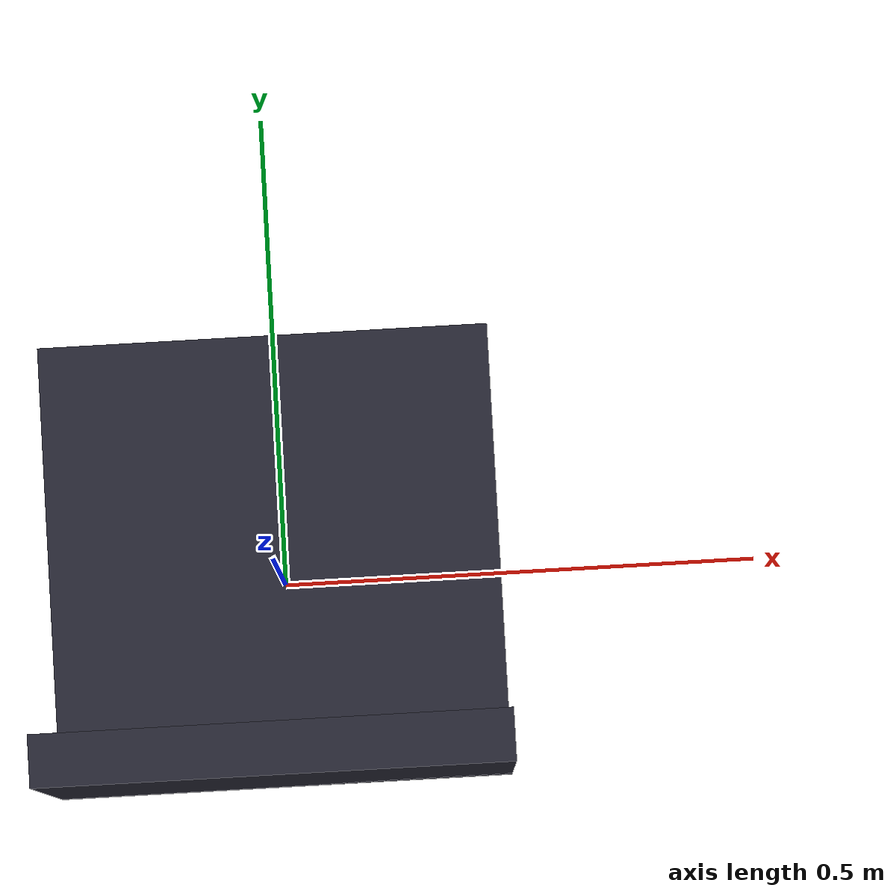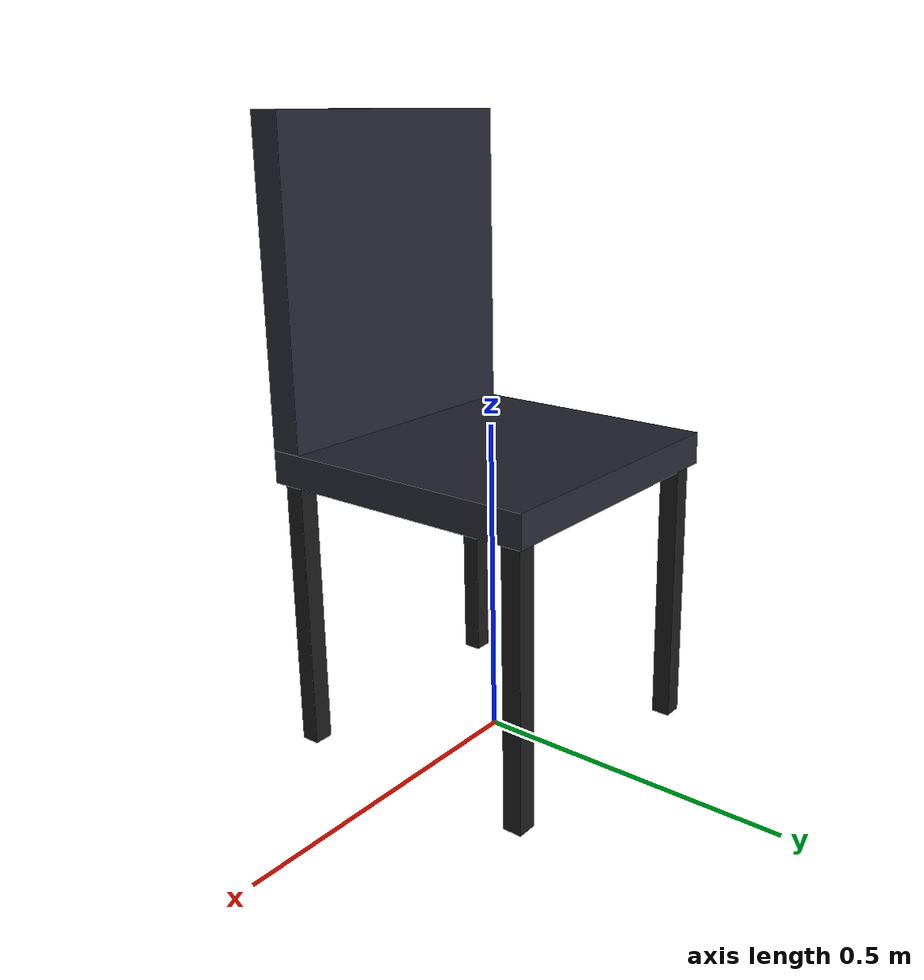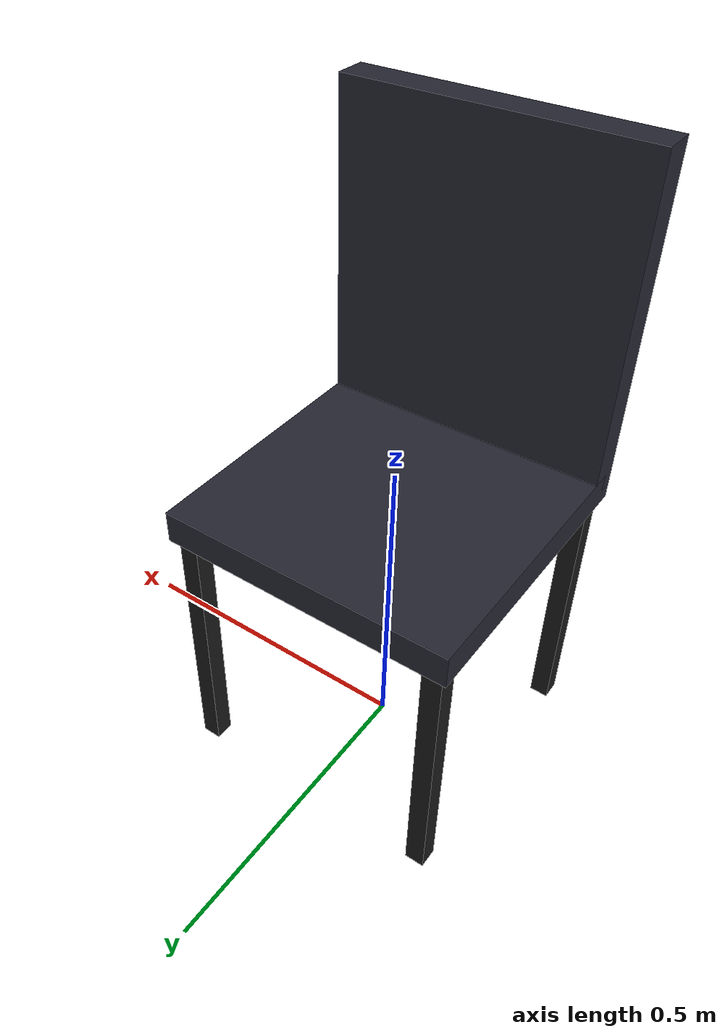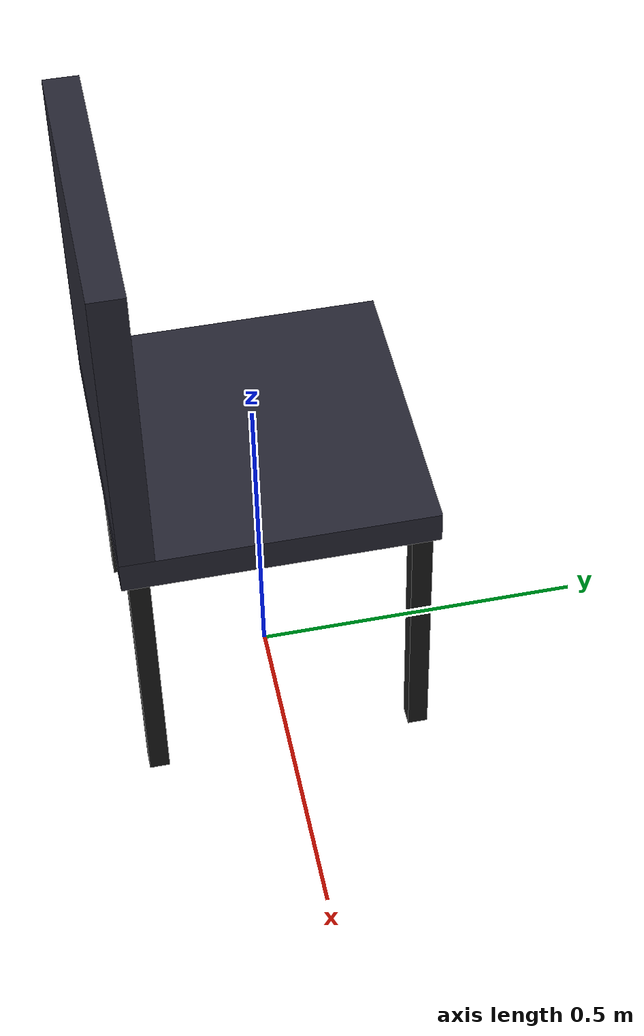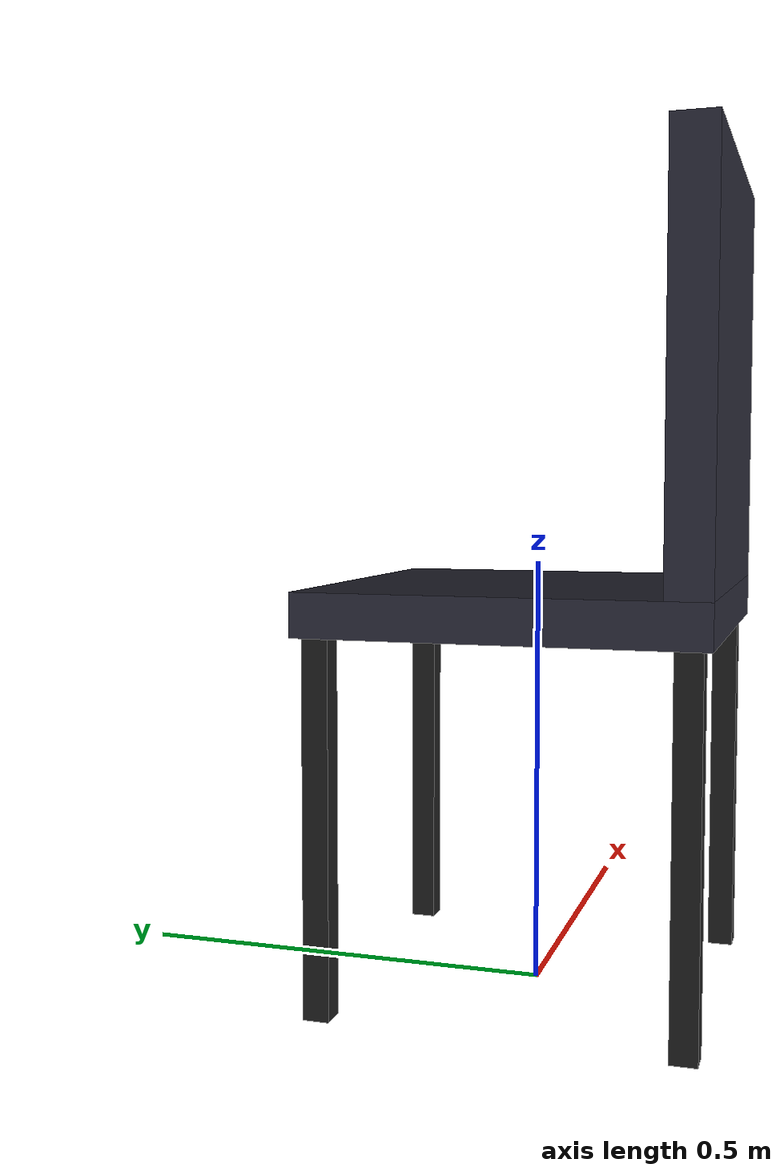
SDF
<?xml version="1.0"?>

<sdf version="1.10">

  <model name="office_chair">

    <static>true</static>

    <link name="chair_link">

      <!-- SEAT                        -->

      <collision name="seat_collision">
        <pose>0 0 0.45 0 0 0</pose>
        <geometry>
          <box>
            <size>0.45 0.45 0.05</size>
          </box>
        </geometry>
      </collision>

      <visual name="seat_visual">
        <pose>0 0 0.45 0 0 0</pose>
        <geometry>
          <box>
            <size>0.45 0.45 0.05</size>
          </box>
        </geometry>
        <material>
          <ambient>0.15 0.15 0.2 1</ambient>
          <diffuse>0.15 0.15 0.2 1</diffuse>
          <specular>0.3 0.3 0.3 1</specular>
        </material>
      </visual>

      <!-- BACKREST                   -->

      <collision name="backrest_collision">
        <pose>0 -0.2 0.7 0 0 0</pose>
        <geometry>
          <box>
            <size>0.45 0.05 0.5</size>
          </box>
        </geometry>
      </collision>

      <visual name="backrest_visual">
        <pose>0 -0.2 0.7 0 0 0</pose>
        <geometry>
          <box>
            <size>0.45 0.05 0.5</size>
          </box>
        </geometry>
        <material>
          <ambient>0.15 0.15 0.2 1</ambient>
          <diffuse>0.15 0.15 0.2 1</diffuse>
          <specular>0.3 0.3 0.3 1</specular>
        </material>
      </visual>

      <!-- LEG 1                      -->

      <collision name="leg_1_collision">
        <pose>0.2 0.2 0.225 0 0 0</pose>
        <geometry>
          <box>
            <size>0.03 0.03 0.45</size>
          </box>
        </geometry>
      </collision>

      <visual name="leg_1_visual">
        <pose>0.2 0.2 0.225 0 0 0</pose>
        <geometry>
          <box>
            <size>0.03 0.03 0.45</size>
          </box>
        </geometry>
        <material>
          <ambient>0.1 0.1 0.1 1</ambient>
          <diffuse>0.1 0.1 0.1 1</diffuse>
        </material>
      </visual>

      <!-- LEG 2                      -->

      <collision name="leg_2_collision">
        <pose>-0.2 0.2 0.225 0 0 0</pose>
        <geometry>
          <box>
            <size>0.03 0.03 0.45</size>
          </box>
        </geometry>
      </collision>

      <visual name="leg_2_visual">
        <pose>-0.2 0.2 0.225 0 0 0</pose>
        <geometry>
          <box>
            <size>0.03 0.03 0.45</size>
          </box>
        </geometry>
        <material>
          <ambient>0.1 0.1 0.1 1</ambient>
          <diffuse>0.1 0.1 0.1 1</diffuse>
        </material>
      </visual>

      <!-- LEG 3                      -->

      <collision name="leg_3_collision">
        <pose>0.2 -0.2 0.225 0 0 0</pose>
        <geometry>
          <box>
            <size>0.03 0.03 0.45</size>
          </box>
        </geometry>
      </collision>

      <visual name="leg_3_visual">
        <pose>0.2 -0.2 0.225 0 0 0</pose>
        <geometry>
          <box>
            <size>0.03 0.03 0.45</size>
          </box>
        </geometry>
        <material>
          <ambient>0.1 0.1 0.1 1</ambient>
          <diffuse>0.1 0.1 0.1 1</diffuse>
        </material>
      </visual>

      <!-- LEG 4                      -->

      <collision name="leg_4_collision">
        <pose>-0.2 -0.2 0.225 0 0 0</pose>
        <geometry>
          <box>
            <size>0.03 0.03 0.45</size>
          </box>
        </geometry>
      </collision>

      <visual name="leg_4_visual">
        <pose>-0.2 -0.2 0.225 0 0 0</pose>
        <geometry>
          <box>
            <size>0.03 0.03 0.45</size>
          </box>
        </geometry>
        <material>
          <ambient>0.1 0.1 0.1 1</ambient>
          <diffuse>0.1 0.1 0.1 1</diffuse>
        </material>
      </visual>

    </link>

  </model>

</sdf>
